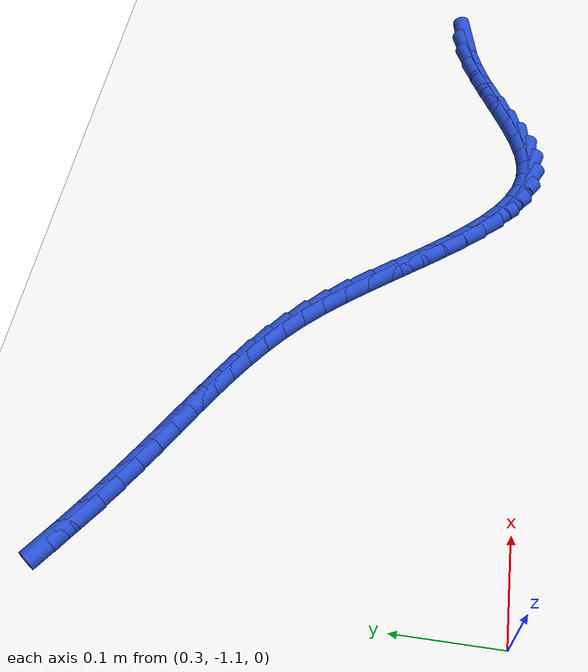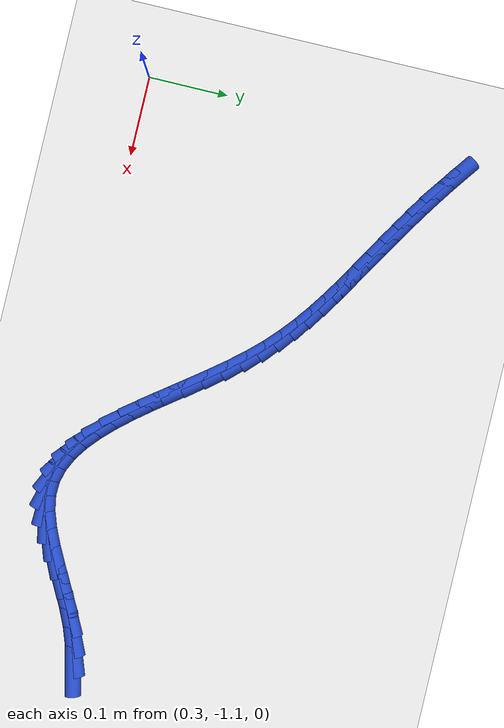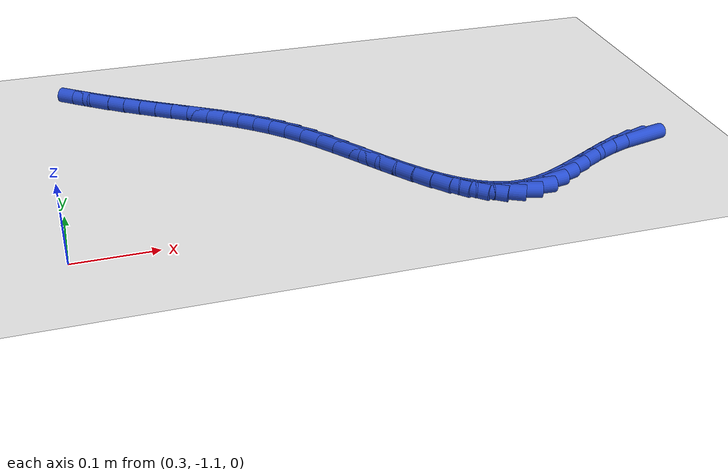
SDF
<sdf version="1.6">
 <world name="default">
  <model name="ground_plane">
   <static>1</static>
   <link name="link">
    <collision name="collision">
     <geometry><plane><normal>0 0 1</normal><size>100 100</size></plane></geometry>
     <surface><friction><ode><mu>100</mu><mu2>50</mu2></ode></friction></surface>
    </collision>
    <visual name="visual">
     <cast_shadows>0</cast_shadows>
     <geometry><plane><normal>0 0 1</normal><size>100 100</size></plane></geometry>
     <material>
      <script><uri>file://media/materials/scripts/gazebo.material</uri><name>Gazebo/WhiteGlow</name></script>
     </material>
    </visual>
   </link>
  </model>
  <model name="line">
   <link name="link_219">
    <pose>1.027626013820649 -1.0225798316719905 0.01 0 1.57 0.22578517171778806</pose>
    <collision name="collision">
     <geometry><cylinder><radius>0.01</radius><length>0.08</length></cylinder></geometry>
    </collision>
    <visual name="visual">
     <material>
      <script><name>Gazebo/Blue</name><uri>file://media/materials/scripts/gazebo.material</uri></script>
     </material>
     <geometry><cylinder><radius>0.01</radius><length>0.08</length></cylinder></geometry>
    </visual>
   </link>
   <link name="link_220">
    <pose>1.0048724597834908 -1.0278063644685074 0.01 0 1.57 0.3458410098711209</pose>
    <collision name="collision">
     <geometry><cylinder><radius>0.01</radius><length>0.08</length></cylinder></geometry>
    </collision>
    <visual name="visual">
     <material>
      <script><name>Gazebo/Blue</name><uri>file://media/materials/scripts/gazebo.material</uri></script>
     </material>
     <geometry><cylinder><radius>0.01</radius><length>0.08</length></cylinder></geometry>
    </visual>
   </link>
   <link name="link_221">
    <pose>0.9821764644696791 -1.0359842411974889 0.01 0 1.57 0.42936149110879773</pose>
    <collision name="collision">
     <geometry><cylinder><radius>0.01</radius><length>0.08</length></cylinder></geometry>
    </collision>
    <visual name="visual">
     <material>
      <script><name>Gazebo/Blue</name><uri>file://media/materials/scripts/gazebo.material</uri></script>
     </material>
     <geometry><cylinder><radius>0.01</radius><length>0.08</length></cylinder></geometry>
    </visual>
   </link>
   <link name="link_222">
    <pose>0.9596168524078936 -1.0463131244113821 0.01 0 1.57 0.477004265535982</pose>
    <collision name="collision">
     <geometry><cylinder><radius>0.01</radius><length>0.08</length></cylinder></geometry>
    </collision>
    <visual name="visual">
     <material>
      <script><name>Gazebo/Blue</name><uri>file://media/materials/scripts/gazebo.material</uri></script>
     </material>
     <geometry><cylinder><radius>0.01</radius><length>0.08</length></cylinder></geometry>
    </visual>
   </link>
   <link name="link_223">
    <pose>0.937282794072719 -1.0578555684806665 0.01 0 1.57 0.4926023637702448</pose>
    <collision name="collision">
     <geometry><cylinder><radius>0.01</radius><length>0.08</length></cylinder></geometry>
    </collision>
    <visual name="visual">
     <material>
      <script><name>Gazebo/Blue</name><uri>file://media/materials/scripts/gazebo.material</uri></script>
     </material>
     <geometry><cylinder><radius>0.01</radius><length>0.08</length></cylinder></geometry>
    </visual>
   </link>
   <link name="link_224">
    <pose>0.9152634599387396 -1.0696741277758224 0.01 0 1.57 0.47649931257734834</pose>
    <collision name="collision">
     <geometry><cylinder><radius>0.01</radius><length>0.08</length></cylinder></geometry>
    </collision>
    <visual name="visual">
     <material>
      <script><name>Gazebo/Blue</name><uri>file://media/materials/scripts/gazebo.material</uri></script>
     </material>
     <geometry><cylinder><radius>0.01</radius><length>0.08</length></cylinder></geometry>
    </visual>
   </link>
   <link name="link_225">
    <pose>0.8936480204805403 -1.0808313566673287 0.01 0 1.57 0.4249537144151205</pose>
    <collision name="collision">
     <geometry><cylinder><radius>0.01</radius><length>0.08</length></cylinder></geometry>
    </collision>
    <visual name="visual">
     <material>
      <script><name>Gazebo/Blue</name><uri>file://media/materials/scripts/gazebo.material</uri></script>
     </material>
     <geometry><cylinder><radius>0.01</radius><length>0.08</length></cylinder></geometry>
    </visual>
   </link>
   <link name="link_226">
    <pose>0.8725256461727056 -1.0903898095256654 0.01 0 1.57 0.32942136252289655</pose>
    <collision name="collision">
     <geometry><cylinder><radius>0.01</radius><length>0.08</length></cylinder></geometry>
    </collision>
    <visual name="visual">
     <material>
      <script><name>Gazebo/Blue</name><uri>file://media/materials/scripts/gazebo.material</uri></script>
     </material>
     <geometry><cylinder><radius>0.01</radius><length>0.08</length></cylinder></geometry>
    </visual>
   </link>
   <link name="link_227">
    <pose>0.8519855074898197 -1.0974120407213122 0.01 0 1.57 0.17673694751256092</pose>
    <collision name="collision">
     <geometry><cylinder><radius>0.01</radius><length>0.08</length></cylinder></geometry>
    </collision>
    <visual name="visual">
     <material>
      <script><name>Gazebo/Blue</name><uri>file://media/materials/scripts/gazebo.material</uri></script>
     </material>
     <geometry><cylinder><radius>0.01</radius><length>0.08</length></cylinder></geometry>
    </visual>
   </link>
   <link name="link_228">
    <pose>0.8321167749064677 -1.1009606046247487 0.01 0 1.57 -0.03893339385662274</pose>
    <collision name="collision">
     <geometry><cylinder><radius>0.01</radius><length>0.08</length></cylinder></geometry>
    </collision>
    <visual name="visual">
     <material>
      <script><name>Gazebo/Blue</name><uri>file://media/materials/scripts/gazebo.material</uri></script>
     </material>
     <geometry><cylinder><radius>0.01</radius><length>0.08</length></cylinder></geometry>
    </visual>
   </link>
   <link name="link_229">
    <pose>0.8129933405302352 -1.1002156880004335 0.01 0 1.57 -0.26351226362186375</pose>
    <collision name="collision">
     <geometry><cylinder><radius>0.01</radius><length>0.08</length></cylinder></geometry>
    </collision>
    <visual name="visual">
     <material>
      <script><name>Gazebo/Blue</name><uri>file://media/materials/scripts/gazebo.material</uri></script>
     </material>
     <geometry><cylinder><radius>0.01</radius><length>0.08</length></cylinder></geometry>
    </visual>
   </link>
   <link name="link_230">
    <pose>0.7945736520958177 -1.0952463159261694 0.01 0 1.57 -0.4552379092309908</pose>
    <collision name="collision">
     <geometry><cylinder><radius>0.01</radius><length>0.08</length></cylinder></geometry>
    </collision>
    <visual name="visual">
     <material>
      <script><name>Gazebo/Blue</name><uri>file://media/materials/scripts/gazebo.material</uri></script>
     </material>
     <geometry><cylinder><radius>0.01</radius><length>0.08</length></cylinder></geometry>
    </visual>
   </link>
   <link name="link_231">
    <pose>0.7767634089136268 -1.0865276382591633 0.01 0 1.57 -0.6062099159250295</pose>
    <collision name="collision">
     <geometry><cylinder><radius>0.01</radius><length>0.08</length></cylinder></geometry>
    </collision>
    <visual name="visual">
     <material>
      <script><name>Gazebo/Blue</name><uri>file://media/materials/scripts/gazebo.material</uri></script>
     </material>
     <geometry><cylinder><radius>0.01</radius><length>0.08</length></cylinder></geometry>
    </visual>
   </link>
   <link name="link_232">
    <pose>0.7594680391472048 -1.074536892491729 0.01 0 1.57 -0.7194972279283516</pose>
    <collision name="collision">
     <geometry><cylinder><radius>0.01</radius><length>0.08</length></cylinder></geometry>
    </collision>
    <visual name="visual">
     <material>
      <script><name>Gazebo/Blue</name><uri>file://media/materials/scripts/gazebo.material</uri></script>
     </material>
     <geometry><cylinder><radius>0.01</radius><length>0.08</length></cylinder></geometry>
    </visual>
   </link>
   <link name="link_233">
    <pose>0.7425929709600946 -1.0597513161161802 0.01 0 1.57 -0.8018540262297816</pose>
    <collision name="collision">
     <geometry><cylinder><radius>0.01</radius><length>0.08</length></cylinder></geometry>
    </collision>
    <visual name="visual">
     <material>
      <script><name>Gazebo/Blue</name><uri>file://media/materials/scripts/gazebo.material</uri></script>
     </material>
     <geometry><cylinder><radius>0.01</radius><length>0.08</length></cylinder></geometry>
    </visual>
   </link>
   <link name="link_234">
    <pose>0.7260436325158373 -1.0426481466248307 0.01 0 1.57 -0.8597141841792469</pose>
    <collision name="collision">
     <geometry><cylinder><radius>0.01</radius><length>0.08</length></cylinder></geometry>
    </collision>
    <visual name="visual">
     <material>
      <script><name>Gazebo/Blue</name><uri>file://media/materials/scripts/gazebo.material</uri></script>
     </material>
     <geometry><cylinder><radius>0.01</radius><length>0.08</length></cylinder></geometry>
    </visual>
   </link>
   <link name="link_235">
    <pose>0.7097254519779758 -1.023704621509994 0.01 0 1.57 -0.89797166649277</pose>
    <collision name="collision">
     <geometry><cylinder><radius>0.01</radius><length>0.08</length></cylinder></geometry>
    </collision>
    <visual name="visual">
     <material>
      <script><name>Gazebo/Blue</name><uri>file://media/materials/scripts/gazebo.material</uri></script>
     </material>
     <geometry><cylinder><radius>0.01</radius><length>0.08</length></cylinder></geometry>
    </visual>
   </link>
   <link name="link_236">
    <pose>0.6935438575100523 -1.0033979782639841 0.01 0 1.57 -0.9199317513241618</pose>
    <collision name="collision">
     <geometry><cylinder><radius>0.01</radius><length>0.08</length></cylinder></geometry>
    </collision>
    <visual name="visual">
     <material>
      <script><name>Gazebo/Blue</name><uri>file://media/materials/scripts/gazebo.material</uri></script>
     </material>
     <geometry><cylinder><radius>0.01</radius><length>0.08</length></cylinder></geometry>
    </visual>
   </link>
   <link name="link_237">
    <pose>0.6774042772756089 -0.9822054543791146 0.01 0 1.57 -0.9275541412770739</pose>
    <collision name="collision">
     <geometry><cylinder><radius>0.01</radius><length>0.08</length></cylinder></geometry>
    </collision>
    <visual name="visual">
     <material>
      <script><name>Gazebo/Blue</name><uri>file://media/materials/scripts/gazebo.material</uri></script>
     </material>
     <geometry><cylinder><radius>0.01</radius><length>0.08</length></cylinder></geometry>
    </visual>
   </link>
   <link name="link_238">
    <pose>0.6612121394381884 -0.9606042873476991 0.01 0 1.57 -0.9216766180980546</pose>
    <collision name="collision">
     <geometry><cylinder><radius>0.01</radius><length>0.08</length></cylinder></geometry>
    </collision>
    <visual name="visual">
     <material>
      <script><name>Gazebo/Blue</name><uri>file://media/materials/scripts/gazebo.material</uri></script>
     </material>
     <geometry><cylinder><radius>0.01</radius><length>0.08</length></cylinder></geometry>
    </visual>
   </link>
   <link name="link_239">
    <pose>0.6448728721613326 -0.9390717146620516 0.01 0 1.57 -0.9021404160982186</pose>
    <collision name="collision">
     <geometry><cylinder><radius>0.01</radius><length>0.08</length></cylinder></geometry>
    </collision>
    <visual name="visual">
     <material>
      <script><name>Gazebo/Blue</name><uri>file://media/materials/scripts/gazebo.material</uri></script>
     </material>
     <geometry><cylinder><radius>0.01</radius><length>0.08</length></cylinder></geometry>
    </visual>
   </link>
   <link name="link_240">
    <pose>0.628291903608584 -0.9180849738144857 0.01 0 1.57 -0.8678128641649441</pose>
    <collision name="collision">
     <geometry><cylinder><radius>0.01</radius><length>0.08</length></cylinder></geometry>
    </collision>
    <visual name="visual">
     <material>
      <script><name>Gazebo/Blue</name><uri>file://media/materials/scripts/gazebo.material</uri></script>
     </material>
     <geometry><cylinder><radius>0.01</radius><length>0.08</length></cylinder></geometry>
    </visual>
   </link>
   <link name="link_241">
    <pose>0.6113746619434849 -0.8981213022973149 0.01 0 1.57 -0.8166736622424992</pose>
    <collision name="collision">
     <geometry><cylinder><radius>0.01</radius><length>0.08</length></cylinder></geometry>
    </collision>
    <visual name="visual">
     <material>
      <script><name>Gazebo/Blue</name><uri>file://media/materials/scripts/gazebo.material</uri></script>
     </material>
     <geometry><cylinder><radius>0.01</radius><length>0.08</length></cylinder></geometry>
    </visual>
   </link>
   <link name="link_242">
    <pose>0.5940274394124023 -0.8796535842702371 0.01 0 1.57 -0.755143067048692</pose>
    <collision name="collision">
     <geometry><cylinder><radius>0.01</radius><length>0.08</length></cylinder></geometry>
    </collision>
    <visual name="visual">
     <material>
      <script><name>Gazebo/Blue</name><uri>file://media/materials/scripts/gazebo.material</uri></script>
     </material>
     <geometry><cylinder><radius>0.01</radius><length>0.08</length></cylinder></geometry>
    </visual>
   </link>
   <link name="link_243">
    <pose>0.5762103976598818 -0.8628833046690656 0.01 0 1.57 -0.6978462171500593</pose>
    <collision name="collision">
     <geometry><cylinder><radius>0.01</radius><length>0.08</length></cylinder></geometry>
    </collision>
    <visual name="visual">
     <material>
      <script><name>Gazebo/Blue</name><uri>file://media/materials/scripts/gazebo.material</uri></script>
     </material>
     <geometry><cylinder><radius>0.01</radius><length>0.08</length></cylinder></geometry>
    </visual>
   </link>
   <link name="link_244">
    <pose>0.5579683812269602 -0.8475853078291681 0.01 0 1.57 -0.647861315330518</pose>
    <collision name="collision">
     <geometry><cylinder><radius>0.01</radius><length>0.08</length></cylinder></geometry>
    </collision>
    <visual name="visual">
     <material>
      <script><name>Gazebo/Blue</name><uri>file://media/materials/scripts/gazebo.material</uri></script>
     </material>
     <geometry><cylinder><radius>0.01</radius><length>0.08</length></cylinder></geometry>
    </visual>
   </link>
   <link name="link_245">
    <pose>0.5393536595260197 -0.8334970308679243 0.01 0 1.57 -0.6066920572071345</pose>
    <collision name="collision">
     <geometry><cylinder><radius>0.01</radius><length>0.08</length></cylinder></geometry>
    </collision>
    <visual name="visual">
     <material>
      <script><name>Gazebo/Blue</name><uri>file://media/materials/scripts/gazebo.material</uri></script>
     </material>
     <geometry><cylinder><radius>0.01</radius><length>0.08</length></cylinder></geometry>
    </visual>
   </link>
   <link name="link_246">
    <pose>0.5204185019694421 -0.8203559109027144 0.01 0 1.57 -0.5754362213687892</pose>
    <collision name="collision">
     <geometry><cylinder><radius>0.01</radius><length>0.08</length></cylinder></geometry>
    </collision>
    <visual name="visual">
     <material>
      <script><name>Gazebo/Blue</name><uri>file://media/materials/scripts/gazebo.material</uri></script>
     </material>
     <geometry><cylinder><radius>0.01</radius><length>0.08</length></cylinder></geometry>
    </visual>
   </link>
   <link name="link_247">
    <pose>0.5012151779696093 -0.8078993850509182 0.01 0 1.57 -0.5547940050403796</pose>
    <collision name="collision">
     <geometry><cylinder><radius>0.01</radius><length>0.08</length></cylinder></geometry>
    </collision>
    <visual name="visual">
     <material>
      <script><name>Gazebo/Blue</name><uri>file://media/materials/scripts/gazebo.material</uri></script>
     </material>
     <geometry><cylinder><radius>0.01</radius><length>0.08</length></cylinder></geometry>
    </visual>
   </link>
   <link name="link_248">
    <pose>0.4817959569389046 -0.7958648904299164 0.01 0 1.57 -0.5451116074985182</pose>
    <collision name="collision">
     <geometry><cylinder><radius>0.01</radius><length>0.08</length></cylinder></geometry>
    </collision>
    <visual name="visual">
     <material>
      <script><name>Gazebo/Blue</name><uri>file://media/materials/scripts/gazebo.material</uri></script>
     </material>
     <geometry><cylinder><radius>0.01</radius><length>0.08</length></cylinder></geometry>
    </visual>
   </link>
   <link name="link_249">
    <pose>0.46221310828970846 -0.783989864157088 0.01 0 1.57 -0.5455261250199879</pose>
    <collision name="collision">
     <geometry><cylinder><radius>0.01</radius><length>0.08</length></cylinder></geometry>
    </collision>
    <visual name="visual">
     <material>
      <script><name>Gazebo/Blue</name><uri>file://media/materials/scripts/gazebo.material</uri></script>
     </material>
     <geometry><cylinder><radius>0.01</radius><length>0.08</length></cylinder></geometry>
    </visual>
   </link>
   <link name="link_250">
    <pose>0.44252056881002616 -0.7720371540641832 0.01 0 1.57 -0.5510691242042605</pose>
    <collision name="collision">
     <geometry><cylinder><radius>0.01</radius><length>0.08</length></cylinder></geometry>
    </collision>
    <visual name="visual">
     <material>
      <script><name>Gazebo/Blue</name><uri>file://media/materials/scripts/gazebo.material</uri></script>
     </material>
     <geometry><cylinder><radius>0.01</radius><length>0.08</length></cylinder></geometry>
    </visual>
   </link>
   <link name="link_251">
    <pose>0.42278121150345865 -0.7599057954256474 0.01 0 1.57 -0.5600689362500798</pose>
    <collision name="collision">
     <geometry><cylinder><radius>0.01</radius><length>0.08</length></cylinder></geometry>
    </collision>
    <visual name="visual">
     <material>
      <script><name>Gazebo/Blue</name><uri>file://media/materials/scripts/gazebo.material</uri></script>
     </material>
     <geometry><cylinder><radius>0.01</radius><length>0.08</length></cylinder></geometry>
    </visual>
   </link>
   <link name="link_252">
    <pose>0.4030608904823683 -0.7475402554523279 0.01 0 1.57 -0.5725058631079272</pose>
    <collision name="collision">
     <geometry><cylinder><radius>0.01</radius><length>0.08</length></cylinder></geometry>
    </collision>
    <visual name="visual">
     <material>
      <script><name>Gazebo/Blue</name><uri>file://media/materials/scripts/gazebo.material</uri></script>
     </material>
     <geometry><cylinder><radius>0.01</radius><length>0.08</length></cylinder></geometry>
    </visual>
   </link>
   <link name="link_253">
    <pose>0.3834254619255939 -0.7348850328480552 0.01 0 1.57 -0.5883798437460536</pose>
    <collision name="collision">
     <geometry><cylinder><radius>0.01</radius><length>0.08</length></cylinder></geometry>
    </collision>
    <visual name="visual">
     <material>
      <script><name>Gazebo/Blue</name><uri>file://media/materials/scripts/gazebo.material</uri></script>
     </material>
     <geometry><cylinder><radius>0.01</radius><length>0.08</length></cylinder></geometry>
    </visual>
   </link>
   <link name="link_254">
    <pose>0.3639407820119736 -0.7218846263166596 0.01 0 1.57 -0.6077045314760561</pose>
    <collision name="collision">
     <geometry><cylinder><radius>0.01</radius><length>0.08</length></cylinder></geometry>
    </collision>
    <visual name="visual">
     <material>
      <script><name>Gazebo/Blue</name><uri>file://media/materials/scripts/gazebo.material</uri></script>
     </material>
     <geometry><cylinder><radius>0.01</radius><length>0.08</length></cylinder></geometry>
    </visual>
   </link>
   <link name="link_255">
    <pose>0.344672706920346 -0.7084835345619714 0.01 0 1.57 -0.6305014718798733</pose>
    <collision name="collision">
     <geometry><cylinder><radius>0.01</radius><length>0.08</length></cylinder></geometry>
    </collision>
    <visual name="visual">
     <material>
      <script><name>Gazebo/Blue</name><uri>file://media/materials/scripts/gazebo.material</uri></script>
     </material>
     <geometry><cylinder><radius>0.01</radius><length>0.08</length></cylinder></geometry>
    </visual>
   </link>
  </model>
 </world>
</sdf>
